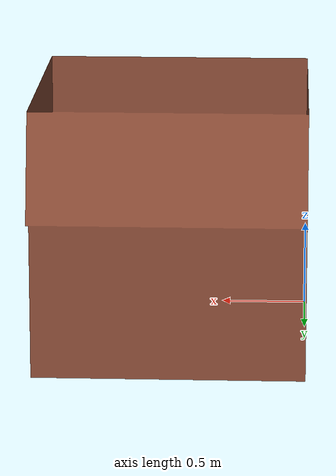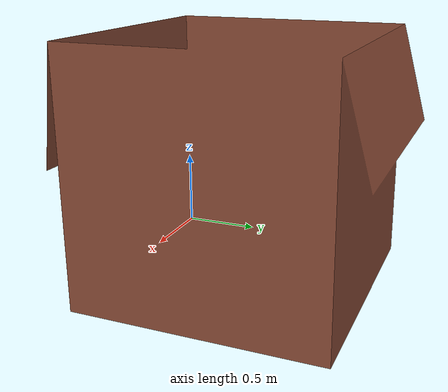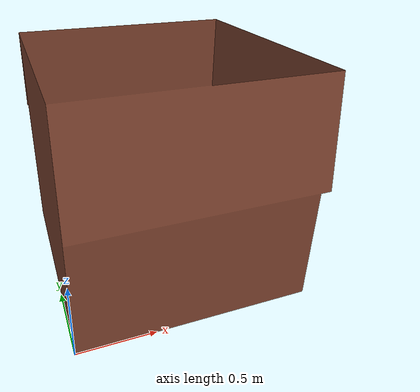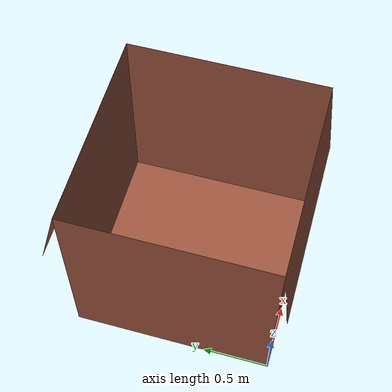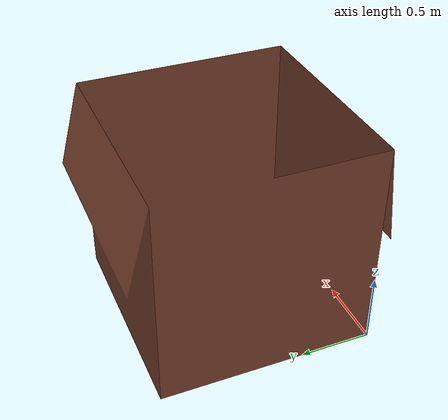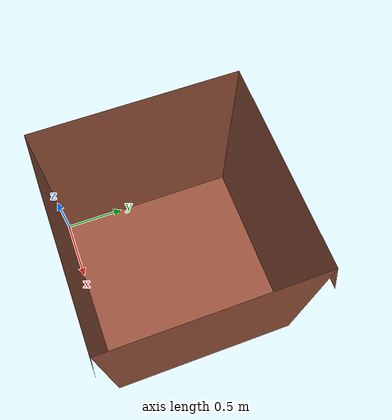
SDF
<?xml version="1.0" ?>
<sdf version="1.6">
  <model name="bookcart">
    <static>true</static>
    <link name="link">
      <visual name="visual">
        <geometry>
          <mesh>
            <uri>model://bookcart/meshes/bookcart.dae</uri>
          </mesh>
        </geometry>
      </visual>
    </link>
  </model>
</sdf>
